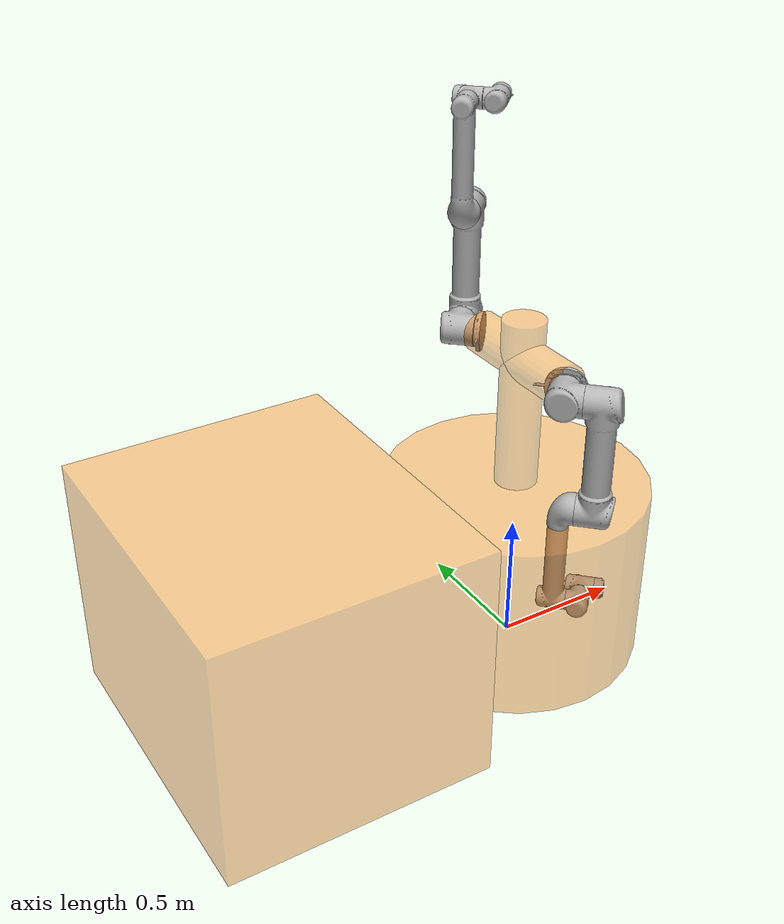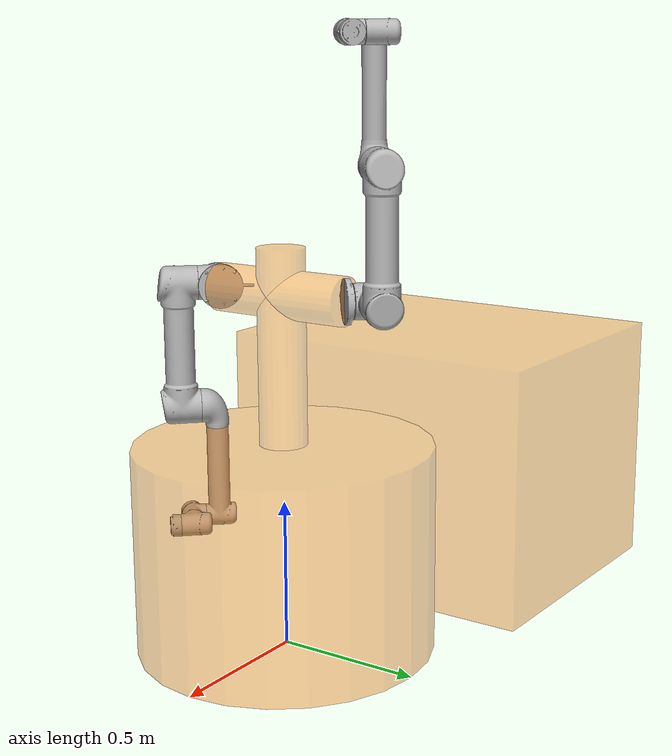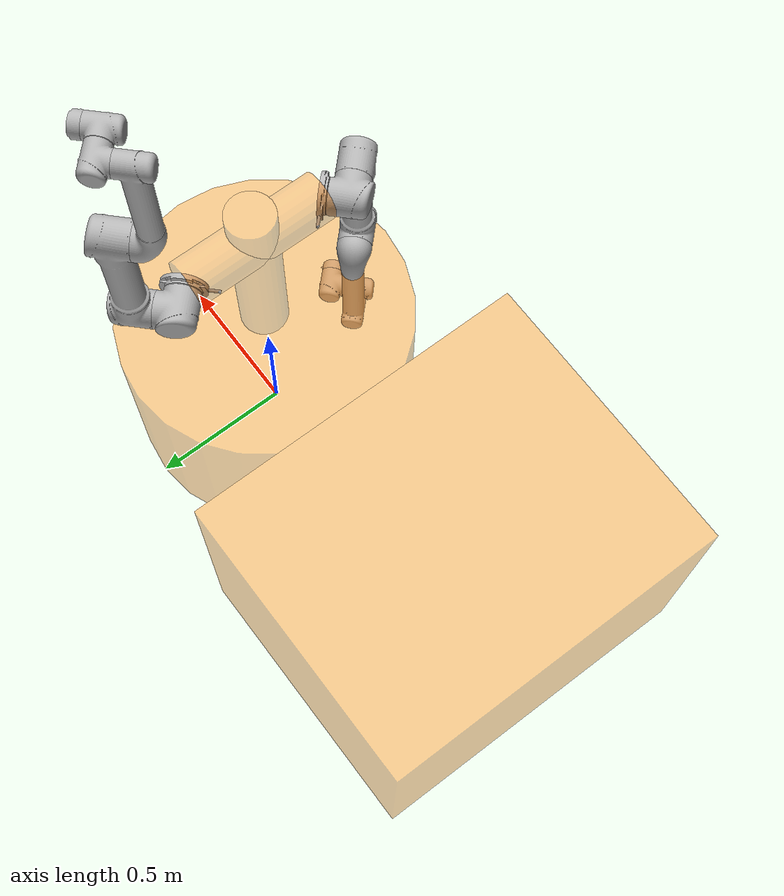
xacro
<?xml version="1.0"?> <!--this tag must be in the first line of the xml files-->
<robot xmlns:xacro="http://www.ros.org/wiki/xacro"
       name="dual_arm_robot">
<!-- rosrun xacro xacro.py dual_arm_robot.urdf.xacro >  dual_arm_robot.urdf -->
  <xacro:property name="pi" value="3.1415926535897931"/>
  <xacro:arg name="prefix_left" default="left_"/>
  <xacro:arg name="prefix_right" default="right_"/>
  <xacro:arg name="limited" default="true"/>

  <!-- common stuff -->
  <xacro:include filename="$(find ur_description)/urdf/common.gazebo.xacro"/>

  <!-- ur5 -->
  <xacro:include filename="$(find dual_arm_robot_description)/urdf/ur5.urdf.xacro"/>

  <xacro:property name="robot_horizontal_stand_width" value="0.5"/>
	<xacro:property name="robot_vertical_stand_height" value="1.2"/>

	<!-- color macros -->
	<xacro:macro name="material_orange_transparent">
		<material name="orange_transparent">
			<color rgba="1 0.5 0 0.4"/>
		</material>
	</xacro:macro>
	<xacro:macro name="material_blue_transparent">
		<material name="blue_transparent">
			<color rgba="0 0.8 1 0.4"/>
		</material>
	</xacro:macro>

	<xacro:material_orange_transparent />
	<xacro:material_blue_transparent />

  <!-- end of color macros -->
  <!-- Stand macros -->
  <link name="stand1">
		<visual>
		<geometry>
		<cylinder radius="0.08" length="0.8"/>
		</geometry>
		<material name="orange_transparent"/>
		</visual>
		<collision>
		<geometry>
		<cylinder radius="0.08" length="0.8"/>
		</geometry>
		<material name="blue_transparent"/>
		</collision>
	</link>

	<link name="stand2">
		<visual>
		<geometry>
		<cylinder radius="0.08" length="${robot_horizontal_stand_width}"/>
		</geometry>
		<material name="orange_transparent"/>
		</visual>
		<collision>
		<geometry>
		<cylinder radius="0.08" length="${robot_horizontal_stand_width}"/>
		</geometry>
		<material name="blue_transparent"/>
		</collision>
	</link>
<link name="stand_Base">
		<visual>
		<geometry>
		<cylinder radius="0.5" length="0.7"/>
		</geometry>
		<material name="orange_transparent"/>
		</visual>
		<collision>
		<geometry>
		<cylinder radius="0.5" length="0.7"/>
		</geometry>
		<material name="blue_transparent"/>
		</collision>
	</link>

	<link name="table">
		<visual>
			<geometry>
				<box size="1 1.2 0.92" />
			</geometry>
			<material name="orange_transparent"/>
		</visual>
		<collision>
			<geometry>
		<box size="1 1.2 0.92" />
		</geometry>
		<material name="blue_transparent"/>
		</collision>
	</link>
  <joint name="table_joint" type="fixed" >
    <parent link="world" />
    <child link="table" />
    <origin xyz="-1 0 0.46" rpy="0 0 0" />
</joint>

  <!-- End of stand macros-->
  <!-- Place the stand in the world -->
  <link name="world"/>
    <!-- place world reference -->
  <joint name="world_to_stand_Base" type="fixed">
		<parent link="world"/>
		<child link="stand_Base"/>
		<origin xyz="0 0 0.35" rpy="0 0 0"/>
	</joint>

	<joint name="Base_to_stand1" type="fixed">
		<parent link="stand_Base"/>
		<child link="stand1"/>
		<origin xyz="0 0 0.6" rpy="0 0 0"/>
	</joint>

	<joint name="stand1_to_stand2" type="fixed">
		<parent link="stand1"/>
		<child link="stand2"/>
		<origin xyz="0 0 0.25" rpy="1.57 1.57 0"/>
	</joint>

  <!-- place ur5 left arm    -->
  <xacro:ur5_robot prefix="$(arg prefix_left)" joint_limited="$(arg limited)"/>
  <joint name="stand2_to_left_arm" type="fixed">
    <parent link="stand2"/>
    <child link ="$(arg prefix_left)base_link"/>
   <origin xyz="0 0 ${(robot_horizontal_stand_width/2)}" rpy="${pi/4.0} 0 0"/>
  </joint>

  <!-- place ur5 endeffector -->

  <!-- place ur5 right arm  -->
  <xacro:ur5_robot prefix="$(arg prefix_right)" joint_limited="$(arg limited)"/>
  <joint name="stand2_to_right_arm" type="fixed">
    <parent link="stand2"/>
    <child link ="$(arg prefix_right)base_link"/>
    <origin xyz="0 0 -${(robot_horizontal_stand_width/2)}" rpy="${pi/4.0} ${pi} 0"/>
  </joint>

  <!-- place ur5 right endeffector -->

</robot>

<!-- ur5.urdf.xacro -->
<robot xmlns:xacro="http://www.ros.org/wiki/xacro">
<!-- edited by Chunting Hoeltgen-->

  <xacro:include filename="$(find ur_description)/urdf/ur.transmission.xacro" />
  <xacro:include filename="$(find ur_description)/urdf/ur.gazebo.xacro" />

  <property name="pi" value="3.14159265" />

  <!-- Inertia parameters -->
  <property name="ur5_base_mass" value="4.0" />  <!-- This mass might be incorrect -->
  <property name="ur5_shoulder_mass" value="3.7000" />
  <property name="ur5_upper_arm_mass" value="8.3930" />
  <property name="ur5_forearm_mass" value="2.2750" />
  <property name="ur5_wrist_1_mass" value="1.2190" />
  <property name="ur5_wrist_2_mass" value="1.2190" />
  <property name="ur5_wrist_3_mass" value="0.1879" />

  <property name="ur5_shoulder_cog" value="0.0 0.00193 -0.02561" />
  <property name="ur5_upper_arm_cog" value="0.0 -0.024201 0.2125" />
  <property name="ur5_forearm_cog" value="0.0 0.0265 0.11993" />
  <property name="ur5_wrist_1_cog" value="0.0 0.110949 0.01634" />
  <property name="ur5_wrist_2_cog" value="0.0 0.0018 0.11099" />
  <property name="ur5_wrist_3_cog" value="0.0 0.001159 0.0" />

  <!-- Kinematic model -->
  <!-- Properties from urcontrol.conf -->
  <property name="ur5_d1" value="0.089159" />
  <property name="ur5_a2" value="-0.42500" />
  <property name="ur5_a3" value="-0.39225" />
  <property name="ur5_d4" value="0.10915" />
  <property name="ur5_d5" value="0.09465" />
  <property name="ur5_d6" value="0.0823" />

  <!-- Arbitrary offsets for shoulder/elbow joints -->
  <property name="ur5_shoulder_offset" value="0.13585" />  <!-- measured from model -->
  <property name="ur5_elbow_offset" value="-0.1197" /> <!-- measured from model -->

  <!-- link lengths used in model -->
  <property name="ur5_shoulder_height" value="${ur5_d1}" />
  <property name="ur5_upper_arm_length" value="${-ur5_a2}" />
  <property name="ur5_forearm_length" value="${-ur5_a3}" />
  <property name="ur5_wrist_1_length" value="${ur5_d4 - ur5_elbow_offset - ur5_shoulder_offset}" />
  <property name="ur5_wrist_2_length" value="${ur5_d5}" />
  <property name="ur5_wrist_3_length" value="${ur5_d6}" />
  <!--property name="ur5_shoulder_height" value="0.089159" /-->
  <!--property name="ur5_shoulder_offset" value="0.13585" /-->  <!-- ur5_shoulder_offset - ur5_elbow_offset + ur5_wrist_1_length = 0.10915 -->
  <!--property name="ur5_upper_arm_length" value="0.42500" /-->
  <!--property name="ur5_elbow_offset" value="0.1197" /-->       <!-- CAD measured -->
  <!--property name="ur5_forearm_length" value="0.39225" /-->
  <!--property name="ur5_wrist_1_length" value="0.093" /-->     <!-- CAD measured -->
  <!--property name="ur5_wrist_2_length" value="0.09465" /-->   <!-- In CAD this distance is 0.930, but in the spec it is 0.09465 -->
  <!--property name="ur5_wrist_3_length" value="0.0823" /-->

  <property name="ur5_shoulder_radius" value="0.060" />   <!-- manually measured -->
  <property name="ur5_upper_arm_radius" value="0.054" />  <!-- manually measured -->
  <property name="ur5_elbow_radius" value="0.060" />      <!-- manually measured -->
  <property name="ur5_forearm_radius" value="0.040" />    <!-- manually measured -->
  <property name="ur5_wrist_radius" value="0.045" />      <!-- manually measured -->

  <xacro:macro name="cylinder_inertial" params="radius length mass *origin">
    <inertial>
      <mass value="${mass}" />
      <insert_block name="origin" />
      <inertia ixx="${0.0833333 * mass * (3 * radius * radius + length * length)}" ixy="0.0" ixz="0.0"
        iyy="${0.0833333 * mass * (3 * radius * radius + length * length)}" iyz="0.0"
        izz="${0.5 * mass * radius * radius}" />
    </inertial>
  </xacro:macro>

  <xacro:macro name="ur5_robot" params="prefix joint_limited">

    <link name="${prefix}base_link" >
      <visual>
        <geometry>
          <mesh filename="package://ur_description/meshes/ur5/visual/base.dae" />
        </geometry>
        <material name="LightGrey">
          <color rgba="0.7 0.7 0.7 1.0"/>
        </material>
      </visual>
      <collision>
        <geometry>
          <mesh filename="package://ur_description/meshes/ur5/collision/base.stl" />
        </geometry>
      </collision>
      <xacro:cylinder_inertial radius="0.06" length="0.05" mass="${ur5_base_mass}">
        <origin xyz="0.0 0.0 0.0" rpy="0 0 0" />
      </xacro:cylinder_inertial>
    </link>

    <joint name="${prefix}shoulder_pan_joint" type="revolute">
      <parent link="${prefix}base_link" />
      <child link = "${prefix}shoulder_link" />
      <origin xyz="0.0 0.0 ${ur5_shoulder_height}" rpy="0.0 0.0 0.0" />
      <axis xyz="0 0 1" />
      <xacro:unless value="${joint_limited}">
        <limit lower="${-pi}" upper="${pi}" effort="150.0" velocity="2"/>
      </xacro:unless>
      <xacro:if value="${joint_limited}">
        <limit lower="${-pi}" upper="${pi}" effort="150.0" velocity="2"/>
      </xacro:if>
      <dynamics damping="0.0" friction="0.0"/>
    </joint>

    <link name="${prefix}shoulder_link">
      <visual>
        <geometry>
          <mesh filename="package://ur_description/meshes/ur5/visual/shoulder.dae" />
        </geometry>
        <material name="LightGrey">
          <color rgba="0.7 0.7 0.7 1.0"/>
        </material>
      </visual>
      <collision>
        <geometry>
          <mesh filename="package://ur_description/meshes/ur5/collision/shoulder.stl" />
        </geometry>
      </collision>
      <xacro:cylinder_inertial radius="0.06" length="0.15" mass="${ur5_shoulder_mass}">
        <origin xyz="0.0 0.0 0.0" rpy="0 0 0" />
      </xacro:cylinder_inertial>
    </link>

    <joint name="${prefix}shoulder_lift_joint" type="revolute">
      <parent link="${prefix}shoulder_link" />
      <child link = "${prefix}upper_arm_link" />
      <origin xyz="0.0 ${ur5_shoulder_offset} 0.0" rpy="0.0 ${pi / 2.0} 0.0" />
      <axis xyz="0 1 0" />
      <xacro:unless value="${joint_limited}">
        <limit lower="${-pi}" upper="${pi}" effort="150.0" velocity="2"/>
      </xacro:unless>
      <xacro:if value="${joint_limited}">
        <limit lower="${-pi}" upper="${pi}" effort="150.0" velocity="2"/>
      </xacro:if>
      <dynamics damping="0.0" friction="0.0"/>
    </joint>

    <link name="${prefix}upper_arm_link">
      <visual>
        <geometry>
          <mesh filename="package://ur_description/meshes/ur5/visual/upperarm.dae" />
        </geometry>
        <material name="LightGrey">
          <color rgba="0.7 0.7 0.7 1.0"/>
        </material>
      </visual>
      <collision>
        <geometry>
          <mesh filename="package://ur_description/meshes/ur5/collision/upperarm.stl" />
        </geometry>
      </collision>
      <xacro:cylinder_inertial radius="0.06" length="0.56" mass="${ur5_upper_arm_mass}">
        <origin xyz="0.0 0.0 0.28" rpy="0 0 0" />
      </xacro:cylinder_inertial>
    </link>

    <joint name="${prefix}elbow_joint" type="revolute">
      <parent link="${prefix}upper_arm_link" />
      <child link = "${prefix}forearm_link" />
      <origin xyz="0.0 ${ur5_elbow_offset} ${ur5_upper_arm_length}" rpy="0.0 0.0 0.0" />
      <axis xyz="0 1 0" />
      <xacro:unless value="${joint_limited}">
        <limit lower="${-pi}" upper="${pi}" effort="150.0" velocity="2"/>
      </xacro:unless>
      <xacro:if value="${joint_limited}">
        <limit lower="${-pi}" upper="${pi}" effort="150.0" velocity="2"/>
      </xacro:if>
      <dynamics damping="0.0" friction="0.0"/>
    </joint>

    <link name="${prefix}forearm_link">
      <visual>
        <geometry>
          <mesh filename="package://ur_description/meshes/ur5/visual/forearm.dae" />
        </geometry>
        <material name="LightGrey">
          <color rgba="0.7 0.7 0.7 1.0"/>
        </material>
      </visual>
      <collision>
        <geometry>
          <mesh filename="package://ur_description/meshes/ur5/collision/forearm.stl" />
        </geometry>
      </collision>
      <xacro:cylinder_inertial radius="0.06" length="0.5" mass="${ur5_forearm_mass}">
        <origin xyz="0.0 0.0 0.25" rpy="0 0 0" />
      </xacro:cylinder_inertial>
    </link>

    <joint name="${prefix}wrist_1_joint" type="revolute">
      <parent link="${prefix}forearm_link" />
      <child link = "${prefix}wrist_1_link" />
      <origin xyz="0.0 0.0 ${ur5_forearm_length}" rpy="0.0 ${pi / 2.0} 0.0" />
      <axis xyz="0 1 0" />
      <xacro:unless value="${joint_limited}">
        <limit lower="${-pi}" upper="${pi}" effort="28.0" velocity="2"/>
      </xacro:unless>
      <xacro:if value="${joint_limited}">
        <limit lower="${-pi}" upper="${pi}" effort="28.0" velocity="2"/>
      </xacro:if>
      <dynamics damping="0.0" friction="0.0"/>
    </joint>

    <link name="${prefix}wrist_1_link">
      <visual>
        <geometry>
          <mesh filename="package://ur_description/meshes/ur5/visual/wrist1.dae" />
        </geometry>
        <material name="LightGrey">
          <color rgba="0.7 0.7 0.7 1.0"/>
        </material>
      </visual>
      <collision>
        <geometry>
          <mesh filename="package://ur_description/meshes/ur5/collision/wrist1.stl" />
        </geometry>
      </collision>
      <xacro:cylinder_inertial radius="0.6" length="0.12" mass="${ur5_wrist_1_mass}">
        <origin xyz="0.0 0.0 0.0" rpy="0 0 0" />
      </xacro:cylinder_inertial>
    </link>

    <joint name="${prefix}wrist_2_joint" type="revolute">
      <parent link="${prefix}wrist_1_link" />
      <child link = "${prefix}wrist_2_link" />
      <origin xyz="0.0 ${ur5_wrist_1_length} 0.0" rpy="0.0 0.0 0.0" />
      <axis xyz="0 0 1" />
      <xacro:unless value="${joint_limited}">
        <limit lower="${-pi}" upper="${pi}" effort="28.0" velocity="2"/>
      </xacro:unless>
      <xacro:if value="${joint_limited}">
        <limit lower="${-2*pi}" upper="${2*pi}" effort="28.0" velocity="2"/>
      </xacro:if>
      <dynamics damping="0.0" friction="0.0"/>
    </joint>

    <link name="${prefix}wrist_2_link">
      <visual>
        <geometry>
          <mesh filename="package://ur_description/meshes/ur5/visual/wrist2.dae" />
        </geometry>
        <material name="LightGrey">
          <color rgba="0.7 0.7 0.7 1.0"/>
        </material>
      </visual>
      <collision>
        <geometry>
          <mesh filename="package://ur_description/meshes/ur5/collision/wrist2.stl" />
        </geometry>
      </collision>
      <xacro:cylinder_inertial radius="0.6" length="0.12" mass="${ur5_wrist_2_mass}">
        <origin xyz="0.0 0.0 0.0" rpy="0 0 0" />
      </xacro:cylinder_inertial>
    </link>

    <joint name="${prefix}wrist_3_joint" type="revolute">
      <parent link="${prefix}wrist_2_link" />
      <child link = "${prefix}wrist_3_link" />
      <origin xyz="0.0 0.0 ${ur5_wrist_2_length}" rpy="0.0 0.0 0.0" />
      <axis xyz="0 1 0" />
      <xacro:unless value="${joint_limited}">
        <limit lower="${-pi}" upper="${pi}" effort="28.0" velocity="2"/>
      </xacro:unless>
      <xacro:if value="${joint_limited}">
        <limit lower="${-2*pi}" upper="${2*pi}" effort="28.0" velocity="2"/>
      </xacro:if>
      <dynamics damping="0.0" friction="0.0"/>
    </joint>

    <link name="${prefix}wrist_3_link">
      <visual>
        <geometry>
          <mesh filename="package://ur_description/meshes/ur5/visual/wrist3.dae" />
        </geometry>
        <material name="LightGrey">
          <color rgba="0.7 0.7 0.7 1.0"/>
        </material>
      </visual>
      <collision>
        <geometry>
          <mesh filename="package://ur_description/meshes/ur5/collision/wrist3.stl" />
        </geometry>
      </collision>
      <xacro:cylinder_inertial radius="0.6" length="0.12" mass="${ur5_wrist_3_mass}">
        <origin xyz="0.0 0.0 0.0" rpy="0 0 0" />
      </xacro:cylinder_inertial>
    </link>

    <joint name="${prefix}ee_fixed_joint" type="fixed">
      <parent link="${prefix}wrist_3_link" />
      <child link = "${prefix}ee_link" />
      <!--origin xyz="0.0 ${ur5_wrist_3_length} 0.0" rpy="${pi/2} ${pi} ${-pi}" /-->
      <origin xyz="0.0 ${ur5_wrist_3_length} 0.0" rpy="0.0 0.0 ${pi/2.0}" />
    </joint>

    <link name="${prefix}ee_link">
      <collision>
        <geometry>
          <box size="0.01 0.01 0.01"/>
        </geometry>
          <origin rpy="0 0 0" xyz="-0.01 0 0"/>
      </collision>
    </link>

    <xacro:ur_arm_transmission prefix="${prefix}" />
    <xacro:ur_arm_gazebo prefix="${prefix}" />

    <!-- ROS base_link to UR 'Base' Coordinates transform -->
    <link name="${prefix}base"/>
    <joint name="${prefix}base_link-base_fixed_joint" type="fixed">
      <!-- NOTE: this rotation is only needed as long as base_link itself is
                 not corrected wrt the real robot (ie: rotated over 180
                 degrees)
      -->
      <origin xyz="0 0 0" rpy="0 0 ${-pi}"/>
      <parent link="${prefix}base_link"/>
      <child link="${prefix}base"/>
    </joint>

    <!-- Frame coincident with all-zeros TCP on UR controller -->

    <link name="${prefix}tool0"/>
    <joint name="${prefix}wrist_3_link-tool0_fixed_joint" type="fixed">
      <origin xyz="0 ${ur5_wrist_3_length} 0" rpy="${pi/-2.0} 0 0"/>
      <parent link="${prefix}wrist_3_link"/>
      <child link="${prefix}tool0"/>
    </joint>

  </xacro:macro>
</robot>
